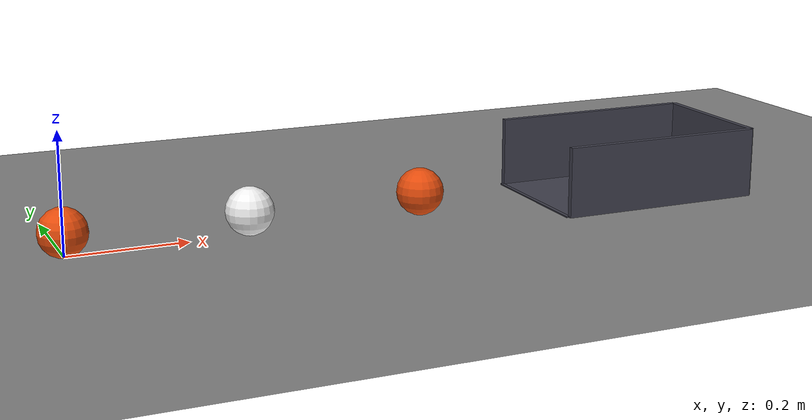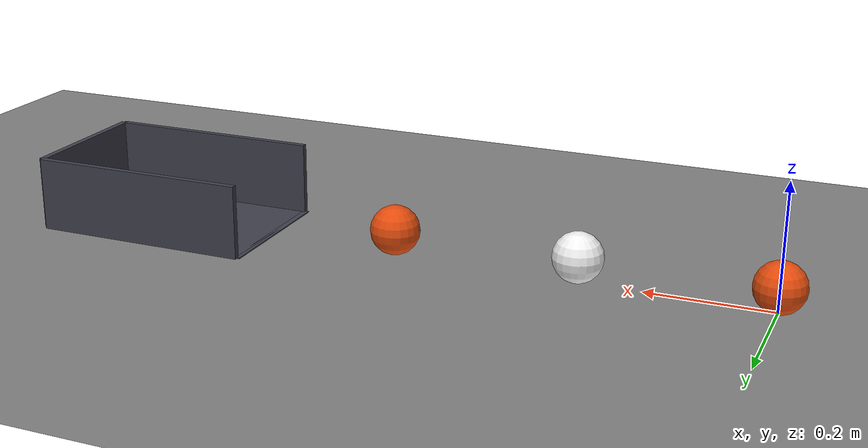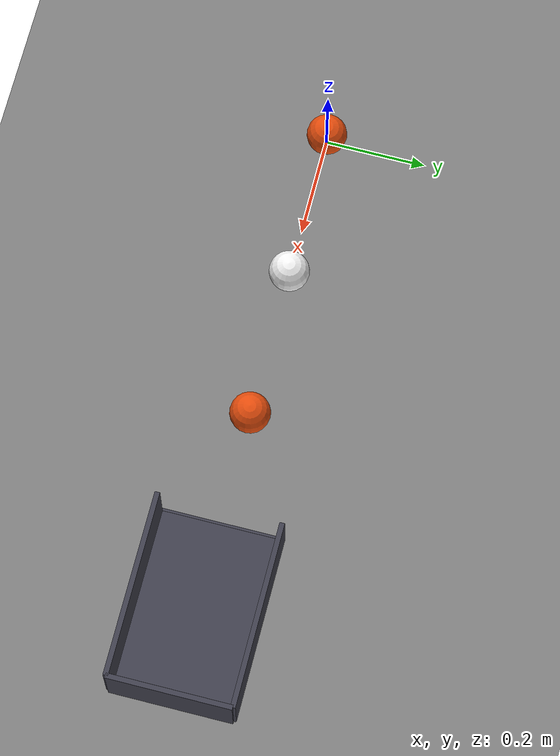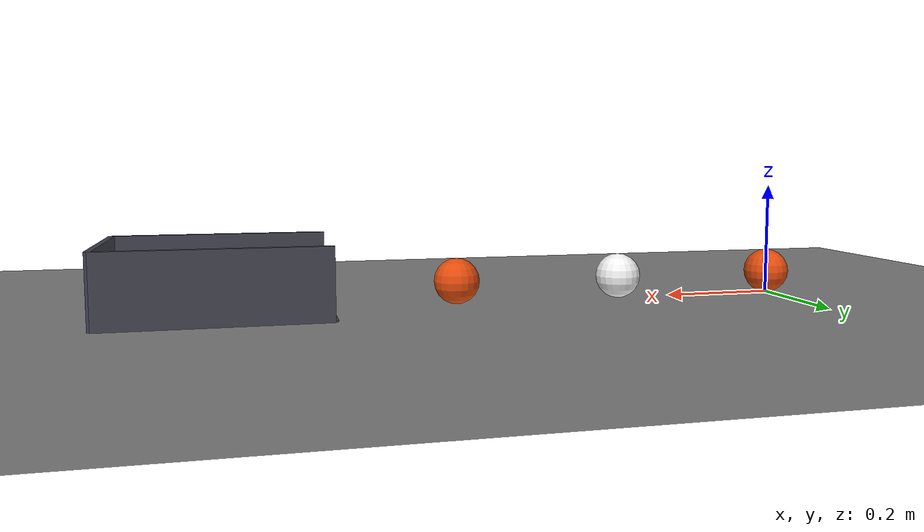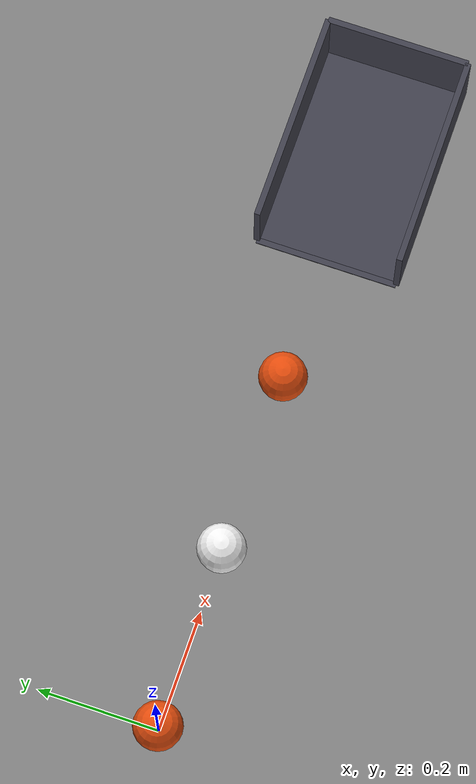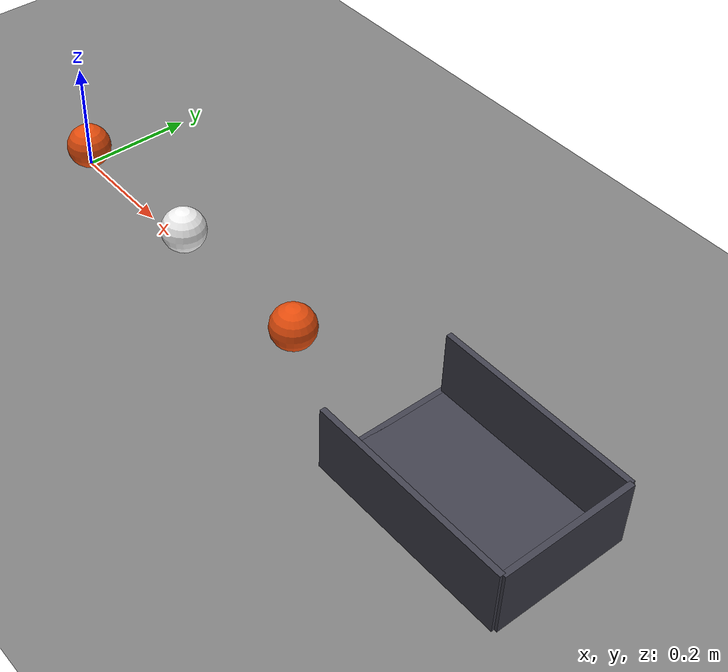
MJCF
<mujoco model="three_balls_roll_into_a_cup">
  <compiler angle="radian"/>
  <option timestep="0.002"/>
  <worldbody>
    <geom name="floor" type="plane" size="4 4 0.1" friction="0.8 0.001 0.0001"/>
    <body name="ball1" pos="0 0 0.04">
      <freejoint/>
      <geom name="ball1" type="sphere" pos="0 0 0" size="0.04" mass="0.15" condim="6" friction="0.8 0.001 0.0001" solref="0.01 0.2" rgba="0.9 0.3 0.05 1"/>
    </body>
    <body name="ball2" pos="0.3 0 0.04">
      <freejoint/>
      <geom name="ball2" type="sphere" pos="0 0 0" size="0.04" mass="0.15" condim="6" friction="0.8 0.001 0.0001" solref="0.01 0.2" rgba="0.95 0.95 0.95 1"/>
    </body>
    <body name="ball3" pos="0.6 0 0.04">
      <freejoint/>
      <geom name="ball3" type="sphere" pos="0 0 0" size="0.04" mass="0.15" condim="6" friction="0.8 0.001 0.0001" solref="0.01 0.2" rgba="0.9 0.3 0.05 1"/>
    </body>
    <body name="cup">
      <geom name="cup_base" type="box" pos="1 0 0.001" size="0.18 0.12 0.001" friction="0.9 0.01 0.004" solref="0.01 1" rgba="0.25 0.25 0.3 1"/>
      <geom name="cup_near_wall" type="box" pos="0.82 0 0.001" size="0.005 0.12 0.001" friction="0.8 0.001 0.0001" solref="0.01 1" rgba="0.25 0.25 0.3 1"/>
      <geom name="cup_far_wall" type="box" pos="1.18 0 0.06" size="0.005 0.12 0.06" friction="0.9 0.01 0.004" solref="0.01 1" rgba="0.25 0.25 0.3 1"/>
      <geom name="cup_left_wall" type="box" pos="1 0.12 0.06" size="0.18 0.005 0.06" friction="0.9 0.01 0.004" solref="0.01 1" rgba="0.25 0.25 0.3 1"/>
      <geom name="cup_right_wall" type="box" pos="1 -0.12 0.06" size="0.18 0.005 0.06" friction="0.9 0.01 0.004" solref="0.01 1" rgba="0.25 0.25 0.3 1"/>
    </body>
  </worldbody>
  <keyframe>
    <key name="start" qpos="0 0 0.04 1 0 0 0 0.3 0 0.04 1 0 0 0 0.6 0 0.04 1 0 0 0" qvel="1.8 0 0 0 45 0 0 0 0 0 0 0 0 0 0 0 0 0"/>
  </keyframe>
</mujoco>
